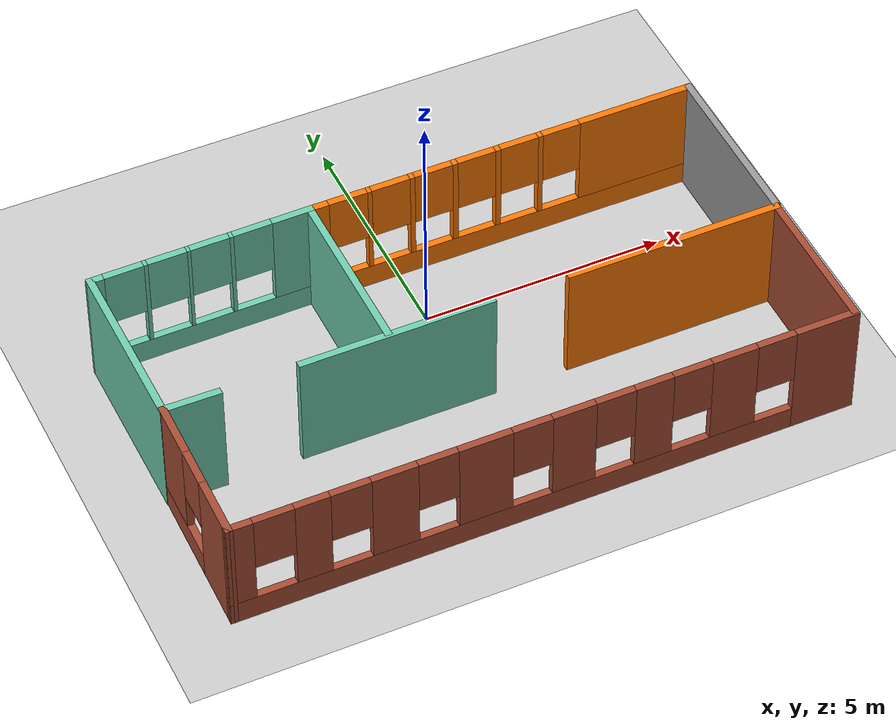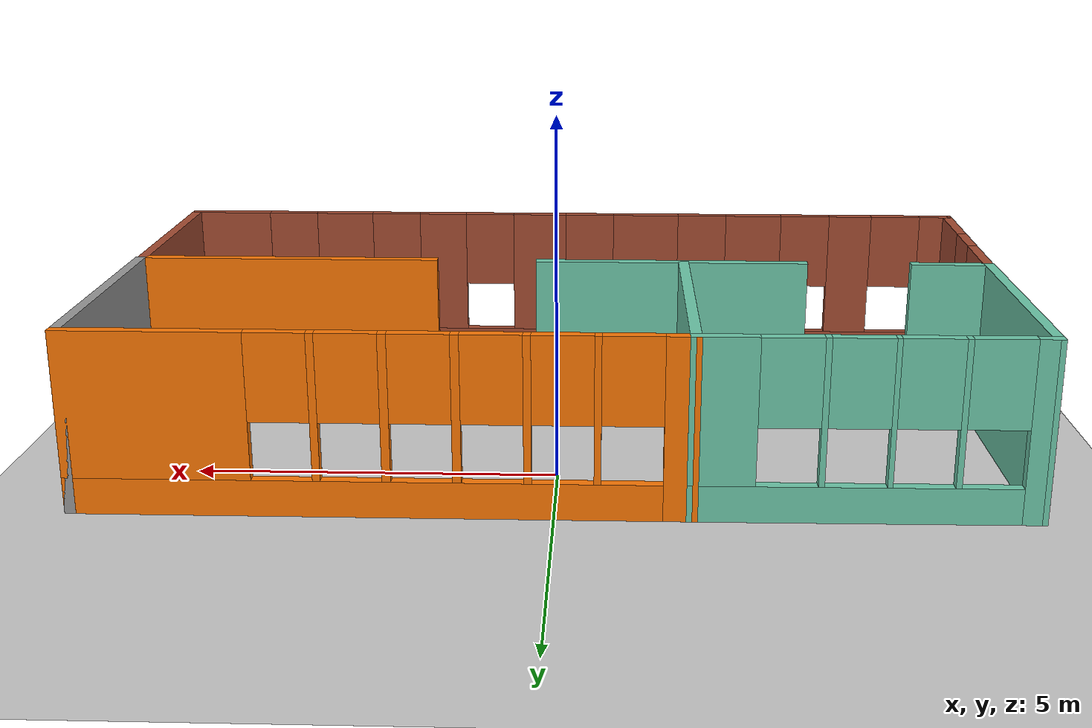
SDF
<sdf version="1.6">
 <world name="default">
  <light name="sun" type="directional">
   <pose>0 0 15 0 -0 0</pose>
   <diffuse>1 1 1 1</diffuse>
   <specular>0.1 0.1 0.1 1</specular>
   <attenuation>
    <range>1000</range>
    <constant>0.9</constant>
    <linear>0.01</linear>
    <quadratic>0.001</quadratic>
   </attenuation>
   <direction>-0.5 0.5 -1</direction>
  </light>
  <model name="ground_plane">
   <static>1</static>
   <link name="link">
    <collision name="collision">
     <geometry><plane><normal>0 0 1</normal><size>100 100</size></plane></geometry>
     <surface><friction><ode><mu>100</mu><mu2>50</mu2></ode></friction></surface>
    </collision>
    <visual name="visual">
     <transparency>1</transparency>
     <cast_shadows>0</cast_shadows>
     <geometry><plane><normal>0 0 1</normal><size>100 100</size></plane></geometry>
     <material>
      <script><uri>file://media/materials/scripts/gazebo.material</uri><name>Gazebo/Grey</name></script>
     </material>
    </visual>
   </link>
  </model>
  <gravity>0 0 -9.8</gravity>
  <magnetic_field>6e-06 2.3e-05 -4.2e-05</magnetic_field>
  <atmosphere type="adiabatic"/>
  <physics name="default_physics" default="0" type="ode">
   <max_step_size>0.001</max_step_size>
   <real_time_factor>1</real_time_factor>
   <real_time_update_rate>1000</real_time_update_rate>
  </physics>
  <scene><ambient>0.4 0.4 0.4 1</ambient><background>0.7 0.7 0.7 1</background><shadows>1</shadows></scene>
  <spherical_coordinates>
   <surface_model>EARTH_WGS84</surface_model>
   <latitude_deg>0</latitude_deg>
   <longitude_deg>0</longitude_deg>
   <elevation>0</elevation>
   <heading_deg>0</heading_deg>
  </spherical_coordinates>
  <model name="Custom_Gazebo_World">
   <pose>0 -2 0 0 -0 0</pose>
   <link name="Wall_10">
    <pose>2.26288 3.39401 0 0 -0 0</pose>
    <visual name="Wall_10_Visual_0">
     <pose>-3.90026 0 1.25 0 -0 0</pose>
     <geometry><box><size>0.449477 0.15 2.5</size></box></geometry>
     <material>
      <script><uri>file://media/materials/scripts/gazebo.material</uri><name>Gazebo/Grey</name></script>
      <ambient>0.996078 0.47451 0.0196078 1</ambient>
     </material>
    </visual>
    <collision name="Wall_10_Collision_0">
     <geometry><box><size>0.449477 0.15 2.5</size></box></geometry>
     <pose>-3.90026 0 1.25 0 -0 0</pose>
    </collision>
    <visual name="Wall_10_Visual_1">
     <pose>0.224738 0 0.25 0 -0 0</pose>
     <geometry><box><size>7.80052 0.15 0.5</size></box></geometry>
     <material>
      <script><uri>file://media/materials/scripts/gazebo.material</uri><name>Gazebo/Grey</name></script>
      <ambient>0.996078 0.47451 0.0196078 1</ambient>
     </material>
    </visual>
    <collision name="Wall_10_Collision_1">
     <geometry><box><size>7.80052 0.15 0.5</size></box></geometry>
     <pose>0.224738 0 0.25 0 -0 0</pose>
    </collision>
    <visual name="Wall_10_Visual_2">
     <pose>-2.83026 0 1.5 0 -0 0</pose>
     <geometry><box><size>0.090528 0.15 2</size></box></geometry>
     <material>
      <script><uri>file://media/materials/scripts/gazebo.material</uri><name>Gazebo/Grey</name></script>
      <ambient>0.996078 0.47451 0.0196078 1</ambient>
     </material>
    </visual>
    <collision name="Wall_10_Collision_2">
     <geometry><box><size>0.090528 0.15 2</size></box></geometry>
     <pose>-2.83026 0 1.5 0 -0 0</pose>
    </collision>
    <visual name="Wall_10_Visual_3">
     <pose>-1.93395 0 1.5 0 -0 0</pose>
     <geometry><box><size>0.102094 0.15 2</size></box></geometry>
     <material>
      <script><uri>file://media/materials/scripts/gazebo.material</uri><name>Gazebo/Grey</name></script>
      <ambient>0.996078 0.47451 0.0196078 1</ambient>
     </material>
    </visual>
    <collision name="Wall_10_Collision_3">
     <geometry><box><size>0.102094 0.15 2</size></box></geometry>
     <pose>-1.93395 0 1.5 0 -0 0</pose>
    </collision>
    <visual name="Wall_10_Visual_4">
     <pose>-1.02607 0 1.5 0 -0 0</pose>
     <geometry><box><size>0.113659 0.15 2</size></box></geometry>
     <material>
      <script><uri>file://media/materials/scripts/gazebo.material</uri><name>Gazebo/Grey</name></script>
      <ambient>0.996078 0.47451 0.0196078 1</ambient>
     </material>
    </visual>
    <collision name="Wall_10_Collision_4">
     <geometry><box><size>0.113659 0.15 2</size></box></geometry>
     <pose>-1.02607 0 1.5 0 -0 0</pose>
    </collision>
    <visual name="Wall_10_Visual_5">
     <pose>-0.112412 0 1.5 0 -0 0</pose>
     <geometry><box><size>0.113659 0.15 2</size></box></geometry>
     <material>
      <script><uri>file://media/materials/scripts/gazebo.material</uri><name>Gazebo/Grey</name></script>
      <ambient>0.996078 0.47451 0.0196078 1</ambient>
     </material>
    </visual>
    <collision name="Wall_10_Collision_5">
     <geometry><box><size>0.113659 0.15 2</size></box></geometry>
     <pose>-0.112412 0 1.5 0 -0 0</pose>
    </collision>
    <visual name="Wall_10_Visual_6">
     <pose>0.795464 0 1.5 0 -0 0</pose>
     <geometry><box><size>0.102094 0.15 2</size></box></geometry>
     <material>
      <script><uri>file://media/materials/scripts/gazebo.material</uri><name>Gazebo/Grey</name></script>
      <ambient>0.996078 0.47451 0.0196078 1</ambient>
     </material>
    </visual>
    <collision name="Wall_10_Collision_6">
     <geometry><box><size>0.102094 0.15 2</size></box></geometry>
     <pose>0.795464 0 1.5 0 -0 0</pose>
    </collision>
    <visual name="Wall_10_Visual_7">
     <pose>2.88576 0 1.5 0 -0 0</pose>
     <geometry><box><size>2.47849 0.15 2</size></box></geometry>
     <material>
      <script><uri>file://media/materials/scripts/gazebo.material</uri><name>Gazebo/Grey</name></script>
      <ambient>0.996078 0.47451 0.0196078 1</ambient>
     </material>
    </visual>
    <collision name="Wall_10_Collision_7">
     <geometry><box><size>2.47849 0.15 2</size></box></geometry>
     <pose>2.88576 0 1.5 0 -0 0</pose>
    </collision>
    <visual name="Wall_10_Visual_8">
     <pose>-3.27552 0 1.9 0 -0 0</pose>
     <geometry><box><size>0.8 0.15 1.2</size></box></geometry>
     <material>
      <script><uri>file://media/materials/scripts/gazebo.material</uri><name>Gazebo/Grey</name></script>
      <ambient>0.996078 0.47451 0.0196078 1</ambient>
     </material>
    </visual>
    <collision name="Wall_10_Collision_8">
     <geometry><box><size>0.8 0.15 1.2</size></box></geometry>
     <pose>-3.27552 0 1.9 0 -0 0</pose>
    </collision>
    <visual name="Wall_10_Visual_9">
     <pose>-2.38499 0 1.9 0 -0 0</pose>
     <geometry><box><size>0.8 0.15 1.2</size></box></geometry>
     <material>
      <script><uri>file://media/materials/scripts/gazebo.material</uri><name>Gazebo/Grey</name></script>
      <ambient>0.996078 0.47451 0.0196078 1</ambient>
     </material>
    </visual>
    <collision name="Wall_10_Collision_9">
     <geometry><box><size>0.8 0.15 1.2</size></box></geometry>
     <pose>-2.38499 0 1.9 0 -0 0</pose>
    </collision>
    <visual name="Wall_10_Visual_10">
     <pose>-1.4829 0 1.9 0 -0 0</pose>
     <geometry><box><size>0.8 0.15 1.2</size></box></geometry>
     <material>
      <script><uri>file://media/materials/scripts/gazebo.material</uri><name>Gazebo/Grey</name></script>
      <ambient>0.996078 0.47451 0.0196078 1</ambient>
     </material>
    </visual>
    <collision name="Wall_10_Collision_10">
     <geometry><box><size>0.8 0.15 1.2</size></box></geometry>
     <pose>-1.4829 0 1.9 0 -0 0</pose>
    </collision>
    <visual name="Wall_10_Visual_11">
     <pose>-0.569242 0 1.9 0 -0 0</pose>
     <geometry><box><size>0.8 0.15 1.2</size></box></geometry>
     <material>
      <script><uri>file://media/materials/scripts/gazebo.material</uri><name>Gazebo/Grey</name></script>
      <ambient>0.996078 0.47451 0.0196078 1</ambient>
     </material>
    </visual>
    <collision name="Wall_10_Collision_11">
     <geometry><box><size>0.8 0.15 1.2</size></box></geometry>
     <pose>-0.569242 0 1.9 0 -0 0</pose>
    </collision>
    <visual name="Wall_10_Visual_12">
     <pose>0.344417 0 1.9 0 -0 0</pose>
     <geometry><box><size>0.8 0.15 1.2</size></box></geometry>
     <material>
      <script><uri>file://media/materials/scripts/gazebo.material</uri><name>Gazebo/Grey</name></script>
      <ambient>0.996078 0.47451 0.0196078 1</ambient>
     </material>
    </visual>
    <collision name="Wall_10_Collision_12">
     <geometry><box><size>0.8 0.15 1.2</size></box></geometry>
     <pose>0.344417 0 1.9 0 -0 0</pose>
    </collision>
    <visual name="Wall_10_Visual_13">
     <pose>1.24651 0 1.9 0 -0 0</pose>
     <geometry><box><size>0.8 0.15 1.2</size></box></geometry>
     <material>
      <script><uri>file://media/materials/scripts/gazebo.material</uri><name>Gazebo/Grey</name></script>
      <ambient>0.996078 0.47451 0.0196078 1</ambient>
     </material>
    </visual>
    <collision name="Wall_10_Collision_13">
     <geometry><box><size>0.8 0.15 1.2</size></box></geometry>
     <pose>1.24651 0 1.9 0 -0 0</pose>
    </collision>
   </link>
   <link name="Wall_11">
    <collision name="Wall_11_Collision">
     <geometry><box><size>3.75 0.15 2.5</size></box></geometry>
     <pose>0 0 1.25 0 -0 0</pose>
    </collision>
    <visual name="Wall_11_Visual">
     <pose>0 0 1.25 0 -0 0</pose>
     <geometry><box><size>3.75 0.15 2.5</size></box></geometry>
     <material>
      <script><uri>file://media/materials/scripts/gazebo.material</uri><name>Gazebo/Grey</name></script>
      <ambient>1 1 1 1</ambient>
     </material>
    </visual>
    <pose>6.31288 1.59401 0 0 0 -1.5708</pose>
   </link>
   <link name="Wall_14">
    <collision name="Wall_14_Collision">
     <geometry><box><size>4.5 0.15 2.5</size></box></geometry>
     <pose>0 0 1.25 0 -0 0</pose>
    </collision>
    <visual name="Wall_14_Visual">
     <pose>0 0 1.25 0 -0 0</pose>
     <geometry><box><size>4.5 0.15 2.5</size></box></geometry>
     <material>
      <script><uri>file://media/materials/scripts/gazebo.material</uri><name>Gazebo/Grey</name></script>
      <ambient>0.996078 0.47451 0.0196078 1</ambient>
     </material>
    </visual>
    <pose>4.11326 -0.293438 0 0 -0 0</pose>
   </link>
   <link name="Wall_16">
    <collision name="Wall_16_Collision">
     <geometry><box><size>3.25 0.15 2.5</size></box></geometry>
     <pose>0 0 1.25 0 -0 0</pose>
    </collision>
    <visual name="Wall_16_Visual">
     <pose>0 0 1.25 0 -0 0</pose>
     <geometry><box><size>3.25 0.15 2.5</size></box></geometry>
     <material>
      <script><uri>file://media/materials/scripts/gazebo.material</uri><name>Gazebo/Bricks</name></script>
      <ambient>0.996078 0.47451 0.0196078 1</ambient>
     </material>
    </visual>
    <pose>6.28826 -1.84344 0 0 0 -1.5708</pose>
   </link>
   <link name="Wall_17">
    <pose>-0.011741 -3.39344 0 0 -0 3.14159</pose>
    <visual name="Wall_17_Visual_0">
     <pose>-5.71433 0 1.25 0 -0 0</pose>
     <geometry><box><size>1.32135 0.15 2.5</size></box></geometry>
     <material>
      <script><uri>file://media/materials/scripts/gazebo.material</uri><name>Gazebo/Bricks</name></script>
      <ambient>0.996078 0.47451 0.0196078 1</ambient>
     </material>
    </visual>
    <collision name="Wall_17_Collision_0">
     <geometry><box><size>1.32135 0.15 2.5</size></box></geometry>
     <pose>-5.71433 0 1.25 0 -0 0</pose>
    </collision>
    <visual name="Wall_17_Visual_1">
     <pose>0.660673 0 0.25 0 -0 0</pose>
     <geometry><box><size>11.4287 0.15 0.5</size></box></geometry>
     <material>
      <script><uri>file://media/materials/scripts/gazebo.material</uri><name>Gazebo/Bricks</name></script>
      <ambient>0.996078 0.47451 0.0196078 1</ambient>
     </material>
    </visual>
    <collision name="Wall_17_Collision_1">
     <geometry><box><size>11.4287 0.15 0.5</size></box></geometry>
     <pose>0.660673 0 0.25 0 -0 0</pose>
    </collision>
    <visual name="Wall_17_Visual_2">
     <pose>-3.78386 0 1.5 0 -0 0</pose>
     <geometry><box><size>0.93959 0.15 2</size></box></geometry>
     <material>
      <script><uri>file://media/materials/scripts/gazebo.material</uri><name>Gazebo/Bricks</name></script>
      <ambient>0.996078 0.47451 0.0196078 1</ambient>
     </material>
    </visual>
    <collision name="Wall_17_Collision_2">
     <geometry><box><size>0.93959 0.15 2</size></box></geometry>
     <pose>-3.78386 0 1.5 0 -0 0</pose>
    </collision>
    <visual name="Wall_17_Visual_3">
     <pose>-2.12518 0 1.5 0 -0 0</pose>
     <geometry><box><size>0.777768 0.15 2</size></box></geometry>
     <material>
      <script><uri>file://media/materials/scripts/gazebo.material</uri><name>Gazebo/Bricks</name></script>
      <ambient>0.996078 0.47451 0.0196078 1</ambient>
     </material>
    </visual>
    <collision name="Wall_17_Collision_3">
     <geometry><box><size>0.777768 0.15 2</size></box></geometry>
     <pose>-2.12518 0 1.5 0 -0 0</pose>
    </collision>
    <visual name="Wall_17_Visual_4">
     <pose>-0.496843 0 1.5 0 -0 0</pose>
     <geometry><box><size>0.878907 0.15 2</size></box></geometry>
     <material>
      <script><uri>file://media/materials/scripts/gazebo.material</uri><name>Gazebo/Bricks</name></script>
      <ambient>0.996078 0.47451 0.0196078 1</ambient>
     </material>
    </visual>
    <collision name="Wall_17_Collision_4">
     <geometry><box><size>0.878907 0.15 2</size></box></geometry>
     <pose>-0.496843 0 1.5 0 -0 0</pose>
    </collision>
    <visual name="Wall_17_Visual_5">
     <pose>1.2832 0 1.5 0 -0 0</pose>
     <geometry><box><size>1.08118 0.15 2</size></box></geometry>
     <material>
      <script><uri>file://media/materials/scripts/gazebo.material</uri><name>Gazebo/Bricks</name></script>
      <ambient>0.996078 0.47451 0.0196078 1</ambient>
     </material>
    </visual>
    <collision name="Wall_17_Collision_5">
     <geometry><box><size>1.08118 0.15 2</size></box></geometry>
     <pose>1.2832 0 1.5 0 -0 0</pose>
    </collision>
    <visual name="Wall_17_Visual_6">
     <pose>3.08347 0 1.5 0 -0 0</pose>
     <geometry><box><size>0.919362 0.15 2</size></box></geometry>
     <material>
      <script><uri>file://media/materials/scripts/gazebo.material</uri><name>Gazebo/Bricks</name></script>
      <ambient>0.996078 0.47451 0.0196078 1</ambient>
     </material>
    </visual>
    <collision name="Wall_17_Collision_6">
     <geometry><box><size>0.919362 0.15 2</size></box></geometry>
     <pose>3.08347 0 1.5 0 -0 0</pose>
    </collision>
    <visual name="Wall_17_Visual_7">
     <pose>4.69158 0 1.5 0 -0 0</pose>
     <geometry><box><size>0.696857 0.15 2</size></box></geometry>
     <material>
      <script><uri>file://media/materials/scripts/gazebo.material</uri><name>Gazebo/Bricks</name></script>
      <ambient>0.996078 0.47451 0.0196078 1</ambient>
     </material>
    </visual>
    <collision name="Wall_17_Collision_7">
     <geometry><box><size>0.696857 0.15 2</size></box></geometry>
     <pose>4.69158 0 1.5 0 -0 0</pose>
    </collision>
    <visual name="Wall_17_Visual_8">
     <pose>6.10751 0 1.5 0 -0 0</pose>
     <geometry><box><size>0.534987 0.15 2</size></box></geometry>
     <material>
      <script><uri>file://media/materials/scripts/gazebo.material</uri><name>Gazebo/Bricks</name></script>
      <ambient>0.996078 0.47451 0.0196078 1</ambient>
     </material>
    </visual>
    <collision name="Wall_17_Collision_8">
     <geometry><box><size>0.534987 0.15 2</size></box></geometry>
     <pose>6.10751 0 1.5 0 -0 0</pose>
    </collision>
    <visual name="Wall_17_Visual_9">
     <pose>-4.65365 0 1.9 0 -0 0</pose>
     <geometry><box><size>0.8 0.15 1.2</size></box></geometry>
     <material>
      <script><uri>file://media/materials/scripts/gazebo.material</uri><name>Gazebo/Bricks</name></script>
      <ambient>0.996078 0.47451 0.0196078 1</ambient>
     </material>
    </visual>
    <collision name="Wall_17_Collision_9">
     <geometry><box><size>0.8 0.15 1.2</size></box></geometry>
     <pose>-4.65365 0 1.9 0 -0 0</pose>
    </collision>
    <visual name="Wall_17_Visual_10">
     <pose>-2.91406 0 1.9 0 -0 0</pose>
     <geometry><box><size>0.8 0.15 1.2</size></box></geometry>
     <material>
      <script><uri>file://media/materials/scripts/gazebo.material</uri><name>Gazebo/Bricks</name></script>
      <ambient>0.996078 0.47451 0.0196078 1</ambient>
     </material>
    </visual>
    <collision name="Wall_17_Collision_10">
     <geometry><box><size>0.8 0.15 1.2</size></box></geometry>
     <pose>-2.91406 0 1.9 0 -0 0</pose>
    </collision>
    <visual name="Wall_17_Visual_11">
     <pose>-1.3363 0 1.9 0 -0 0</pose>
     <geometry><box><size>0.8 0.15 1.2</size></box></geometry>
     <material>
      <script><uri>file://media/materials/scripts/gazebo.material</uri><name>Gazebo/Bricks</name></script>
      <ambient>0.996078 0.47451 0.0196078 1</ambient>
     </material>
    </visual>
    <collision name="Wall_17_Collision_11">
     <geometry><box><size>0.8 0.15 1.2</size></box></geometry>
     <pose>-1.3363 0 1.9 0 -0 0</pose>
    </collision>
    <visual name="Wall_17_Visual_12">
     <pose>0.34261 0 1.9 0 -0 0</pose>
     <geometry><box><size>0.8 0.15 1.2</size></box></geometry>
     <material>
      <script><uri>file://media/materials/scripts/gazebo.material</uri><name>Gazebo/Bricks</name></script>
      <ambient>0.996078 0.47451 0.0196078 1</ambient>
     </material>
    </visual>
    <collision name="Wall_17_Collision_12">
     <geometry><box><size>0.8 0.15 1.2</size></box></geometry>
     <pose>0.34261 0 1.9 0 -0 0</pose>
    </collision>
    <visual name="Wall_17_Visual_13">
     <pose>2.22379 0 1.9 0 -0 0</pose>
     <geometry><box><size>0.8 0.15 1.2</size></box></geometry>
     <material>
      <script><uri>file://media/materials/scripts/gazebo.material</uri><name>Gazebo/Bricks</name></script>
      <ambient>0.996078 0.47451 0.0196078 1</ambient>
     </material>
    </visual>
    <collision name="Wall_17_Collision_13">
     <geometry><box><size>0.8 0.15 1.2</size></box></geometry>
     <pose>2.22379 0 1.9 0 -0 0</pose>
    </collision>
    <visual name="Wall_17_Visual_14">
     <pose>3.94316 0 1.9 0 -0 0</pose>
     <geometry><box><size>0.8 0.15 1.2</size></box></geometry>
     <material>
      <script><uri>file://media/materials/scripts/gazebo.material</uri><name>Gazebo/Bricks</name></script>
      <ambient>0.996078 0.47451 0.0196078 1</ambient>
     </material>
    </visual>
    <collision name="Wall_17_Collision_14">
     <geometry><box><size>0.8 0.15 1.2</size></box></geometry>
     <pose>3.94316 0 1.9 0 -0 0</pose>
    </collision>
    <visual name="Wall_17_Visual_15">
     <pose>5.44001 0 1.9 0 -0 0</pose>
     <geometry><box><size>0.8 0.15 1.2</size></box></geometry>
     <material>
      <script><uri>file://media/materials/scripts/gazebo.material</uri><name>Gazebo/Bricks</name></script>
      <ambient>0.996078 0.47451 0.0196078 1</ambient>
     </material>
    </visual>
    <collision name="Wall_17_Collision_15">
     <geometry><box><size>0.8 0.15 1.2</size></box></geometry>
     <pose>5.44001 0 1.9 0 -0 0</pose>
    </collision>
   </link>
   <link name="Wall_18">
    <pose>-6.28769 -1.81656 0 0 -0 1.55555</pose>
    <visual name="Wall_18_Visual_0">
     <pose>-1.00436 0 1.25 0 -0 0</pose>
     <geometry><box><size>1.29542 0.15 2.5</size></box></geometry>
     <material>
      <script><uri>file://media/materials/scripts/gazebo.material</uri><name>Gazebo/Bricks</name></script>
      <ambient>0.435294 0.796078 0.67451 1</ambient>
     </material>
    </visual>
    <collision name="Wall_18_Collision_0">
     <geometry><box><size>1.29542 0.15 2.5</size></box></geometry>
     <pose>-1.00436 0 1.25 0 -0 0</pose>
    </collision>
    <visual name="Wall_18_Visual_1">
     <pose>0.647708 0 0.25 0 -0 0</pose>
     <geometry><box><size>2.00871 0.15 0.5</size></box></geometry>
     <material>
      <script><uri>file://media/materials/scripts/gazebo.material</uri><name>Gazebo/Bricks</name></script>
      <ambient>0.435294 0.796078 0.67451 1</ambient>
     </material>
    </visual>
    <collision name="Wall_18_Collision_1">
     <geometry><box><size>2.00871 0.15 0.5</size></box></geometry>
     <pose>0.647708 0 0.25 0 -0 0</pose>
    </collision>
    <visual name="Wall_18_Visual_2">
     <pose>1.04771 0 1.5 0 -0 0</pose>
     <geometry><box><size>1.20871 0.15 2</size></box></geometry>
     <material>
      <script><uri>file://media/materials/scripts/gazebo.material</uri><name>Gazebo/Bricks</name></script>
      <ambient>0.435294 0.796078 0.67451 1</ambient>
     </material>
    </visual>
    <collision name="Wall_18_Collision_2">
     <geometry><box><size>1.20871 0.15 2</size></box></geometry>
     <pose>1.04771 0 1.5 0 -0 0</pose>
    </collision>
    <visual name="Wall_18_Visual_3">
     <pose>0.043352 0 1.9 0 -0 0</pose>
     <geometry><box><size>0.8 0.15 1.2</size></box></geometry>
     <material>
      <script><uri>file://media/materials/scripts/gazebo.material</uri><name>Gazebo/Bricks</name></script>
      <ambient>0.435294 0.796078 0.67451 1</ambient>
     </material>
    </visual>
    <collision name="Wall_18_Collision_3">
     <geometry><box><size>0.8 0.15 1.2</size></box></geometry>
     <pose>0.043352 0 1.9 0 -0 0</pose>
    </collision>
   </link>
   <link name="Wall_22">
    <pose>-4.03041 3.37717 0 0 -0 0.007508</pose>
    <visual name="Wall_22_Visual_0">
     <pose>-2.15142 0 1.25 0 -0 0</pose>
     <geometry><box><size>0.333858 0.15 2.5</size></box></geometry>
     <material>
      <script><uri>file://media/materials/scripts/gazebo.material</uri><name>Gazebo/Grey</name></script>
      <ambient>0.435294 0.796078 0.67451 1</ambient>
     </material>
    </visual>
    <collision name="Wall_22_Collision_0">
     <geometry><box><size>0.333858 0.15 2.5</size></box></geometry>
     <pose>-2.15142 0 1.25 0 -0 0</pose>
    </collision>
    <visual name="Wall_22_Visual_1">
     <pose>0.166929 0 0.25 0 -0 0</pose>
     <geometry><box><size>4.30284 0.15 0.5</size></box></geometry>
     <material>
      <script><uri>file://media/materials/scripts/gazebo.material</uri><name>Gazebo/Grey</name></script>
      <ambient>0.435294 0.796078 0.67451 1</ambient>
     </material>
    </visual>
    <collision name="Wall_22_Collision_1">
     <geometry><box><size>4.30284 0.15 0.5</size></box></geometry>
     <pose>0.166929 0 0.25 0 -0 0</pose>
    </collision>
    <visual name="Wall_22_Visual_2">
     <pose>-1.14559 0 1.5 0 -0 0</pose>
     <geometry><box><size>0.077809 0.15 2</size></box></geometry>
     <material>
      <script><uri>file://media/materials/scripts/gazebo.material</uri><name>Gazebo/Grey</name></script>
      <ambient>0.435294 0.796078 0.67451 1</ambient>
     </material>
    </visual>
    <collision name="Wall_22_Collision_2">
     <geometry><box><size>0.077809 0.15 2</size></box></geometry>
     <pose>-1.14559 0 1.5 0 -0 0</pose>
    </collision>
    <visual name="Wall_22_Visual_3">
     <pose>-0.272648 0 1.5 0 -0 0</pose>
     <geometry><box><size>0.068068 0.15 2</size></box></geometry>
     <material>
      <script><uri>file://media/materials/scripts/gazebo.material</uri><name>Gazebo/Grey</name></script>
      <ambient>0.435294 0.796078 0.67451 1</ambient>
     </material>
    </visual>
    <collision name="Wall_22_Collision_3">
     <geometry><box><size>0.068068 0.15 2</size></box></geometry>
     <pose>-0.272648 0 1.5 0 -0 0</pose>
    </collision>
    <visual name="Wall_22_Visual_4">
     <pose>0.601202 0 1.5 0 -0 0</pose>
     <geometry><box><size>0.079633 0.15 2</size></box></geometry>
     <material>
      <script><uri>file://media/materials/scripts/gazebo.material</uri><name>Gazebo/Grey</name></script>
      <ambient>0.435294 0.796078 0.67451 1</ambient>
     </material>
    </visual>
    <collision name="Wall_22_Collision_4">
     <geometry><box><size>0.079633 0.15 2</size></box></geometry>
     <pose>0.601202 0 1.5 0 -0 0</pose>
    </collision>
    <visual name="Wall_22_Visual_5">
     <pose>1.87968 0 1.5 0 -0 0</pose>
     <geometry><box><size>0.877331 0.15 2</size></box></geometry>
     <material>
      <script><uri>file://media/materials/scripts/gazebo.material</uri><name>Gazebo/Grey</name></script>
      <ambient>0.435294 0.796078 0.67451 1</ambient>
     </material>
    </visual>
    <collision name="Wall_22_Collision_5">
     <geometry><box><size>0.877331 0.15 2</size></box></geometry>
     <pose>1.87968 0 1.5 0 -0 0</pose>
    </collision>
    <visual name="Wall_22_Visual_6">
     <pose>-1.58449 0 1.9 0 -0 0</pose>
     <geometry><box><size>0.8 0.15 1.2</size></box></geometry>
     <material>
      <script><uri>file://media/materials/scripts/gazebo.material</uri><name>Gazebo/Grey</name></script>
      <ambient>0.435294 0.796078 0.67451 1</ambient>
     </material>
    </visual>
    <collision name="Wall_22_Collision_6">
     <geometry><box><size>0.8 0.15 1.2</size></box></geometry>
     <pose>-1.58449 0 1.9 0 -0 0</pose>
    </collision>
    <visual name="Wall_22_Visual_7">
     <pose>-0.706683 0 1.9 0 -0 0</pose>
     <geometry><box><size>0.8 0.15 1.2</size></box></geometry>
     <material>
      <script><uri>file://media/materials/scripts/gazebo.material</uri><name>Gazebo/Grey</name></script>
      <ambient>0.435294 0.796078 0.67451 1</ambient>
     </material>
    </visual>
    <collision name="Wall_22_Collision_7">
     <geometry><box><size>0.8 0.15 1.2</size></box></geometry>
     <pose>-0.706683 0 1.9 0 -0 0</pose>
    </collision>
    <visual name="Wall_22_Visual_8">
     <pose>0.161386 0 1.9 0 -0 0</pose>
     <geometry><box><size>0.8 0.15 1.2</size></box></geometry>
     <material>
      <script><uri>file://media/materials/scripts/gazebo.material</uri><name>Gazebo/Grey</name></script>
      <ambient>0.435294 0.796078 0.67451 1</ambient>
     </material>
    </visual>
    <collision name="Wall_22_Collision_8">
     <geometry><box><size>0.8 0.15 1.2</size></box></geometry>
     <pose>0.161386 0 1.9 0 -0 0</pose>
    </collision>
    <visual name="Wall_22_Visual_9">
     <pose>1.04102 0 1.9 0 -0 0</pose>
     <geometry><box><size>0.8 0.15 1.2</size></box></geometry>
     <material>
      <script><uri>file://media/materials/scripts/gazebo.material</uri><name>Gazebo/Grey</name></script>
      <ambient>0.435294 0.796078 0.67451 1</ambient>
     </material>
    </visual>
    <collision name="Wall_22_Collision_9">
     <geometry><box><size>0.8 0.15 1.2</size></box></geometry>
     <pose>1.04102 0 1.9 0 -0 0</pose>
    </collision>
   </link>
   <link name="Wall_3">
    <collision name="Wall_3_Collision">
     <geometry><box><size>3.75 0.15 2.5</size></box></geometry>
     <pose>0 0 1.25 0 -0 0</pose>
    </collision>
    <visual name="Wall_3_Visual">
     <pose>0 0 1.25 0 -0 0</pose>
     <geometry><box><size>3.75 0.15 2.5</size></box></geometry>
     <material>
      <script><uri>file://media/materials/scripts/gazebo.material</uri><name>Gazebo/Grey</name></script>
      <ambient>0.435294 0.796078 0.67451 1</ambient>
     </material>
    </visual>
    <pose>-6.2737 1.56032 0 0 0 -1.5708</pose>
   </link>
   <link name="Wall_4">
    <collision name="Wall_4_Collision">
     <geometry><box><size>1.2142 0.15 2.5</size></box></geometry>
     <pose>0 0 1.25 0 -0 0</pose>
    </collision>
    <visual name="Wall_4_Visual">
     <pose>0 0 1.25 0 -0 0</pose>
     <geometry><box><size>1.2142 0.15 2.5</size></box></geometry>
     <material>
      <script><uri>file://media/materials/scripts/gazebo.material</uri><name>Gazebo/Grey</name></script>
      <ambient>0.435294 0.796078 0.67451 1</ambient>
     </material>
    </visual>
    <pose>-5.7316 -0.24759 0 0 0 -0.014875</pose>
   </link>
   <link name="Wall_6">
    <collision name="Wall_6_Collision">
     <geometry><box><size>4 0.15 2.5</size></box></geometry>
     <pose>0 0 1.25 0 -0 0</pose>
    </collision>
    <visual name="Wall_6_Visual">
     <pose>0 0 1.25 0 -0 0</pose>
     <geometry><box><size>4 0.15 2.5</size></box></geometry>
     <material>
      <script><uri>file://media/materials/scripts/gazebo.material</uri><name>Gazebo/Grey</name></script>
      <ambient>0.435294 0.796078 0.67451 1</ambient>
     </material>
    </visual>
    <pose>-1.61113 -0.258458 0 0 -0 0</pose>
   </link>
   <link name="Wall_9">
    <collision name="Wall_9_Collision">
     <geometry><box><size>3.75 0.15 2.5</size></box></geometry>
     <pose>0 0 1.25 0 -0 0</pose>
    </collision>
    <visual name="Wall_9_Visual">
     <pose>0 0 1.25 0 -0 0</pose>
     <geometry><box><size>3.75 0.15 2.5</size></box></geometry>
     <material>
      <script><uri>file://media/materials/scripts/gazebo.material</uri><name>Gazebo/Grey</name></script>
      <ambient>0.435294 0.796078 0.67451 1</ambient>
     </material>
    </visual>
    <pose>-1.78712 1.59401 0 0 -0 1.5708</pose>
   </link>
   <static>1</static>
  </model>
 </world>
</sdf>
